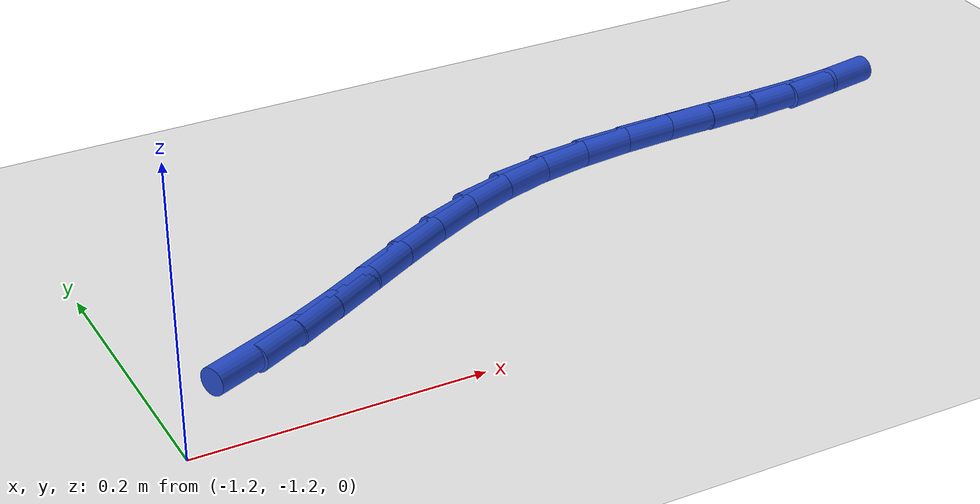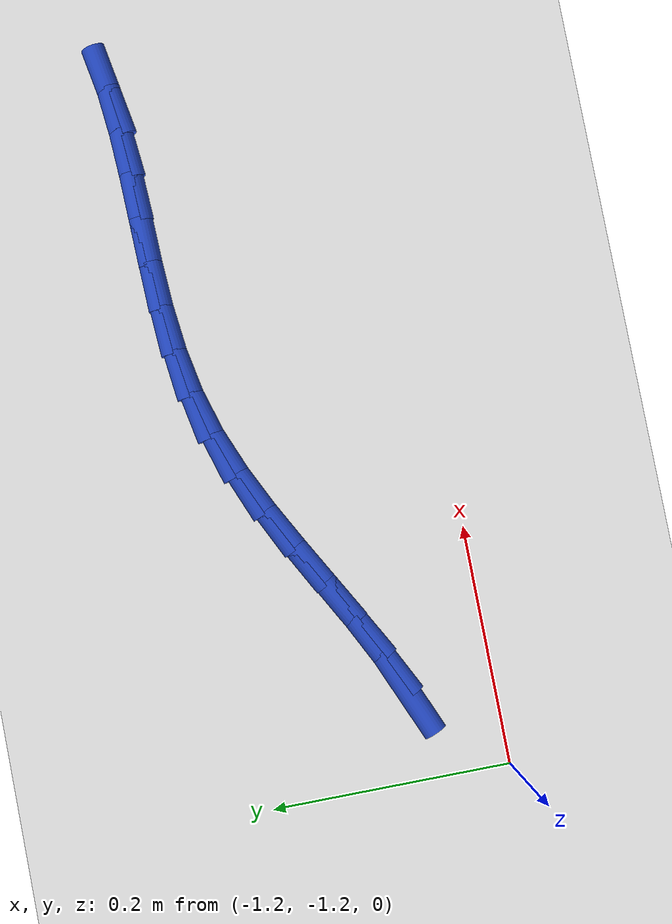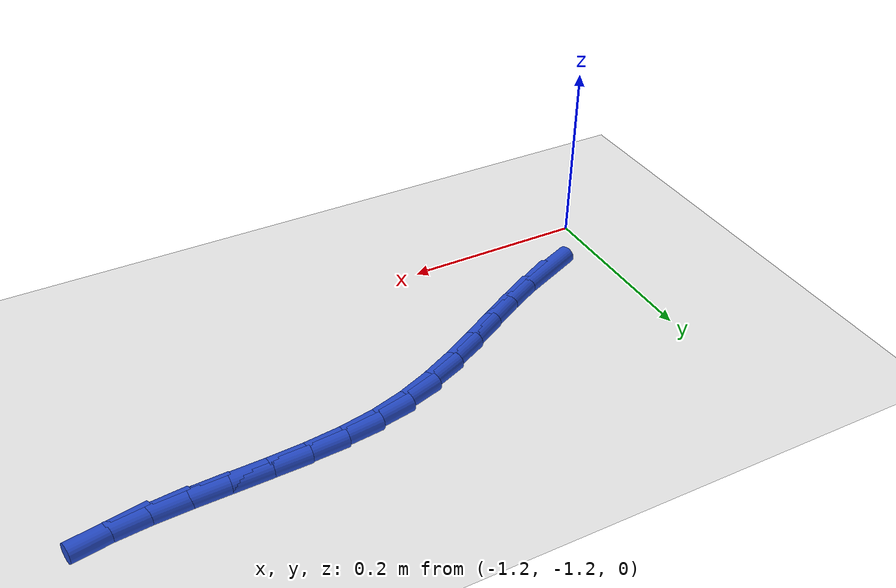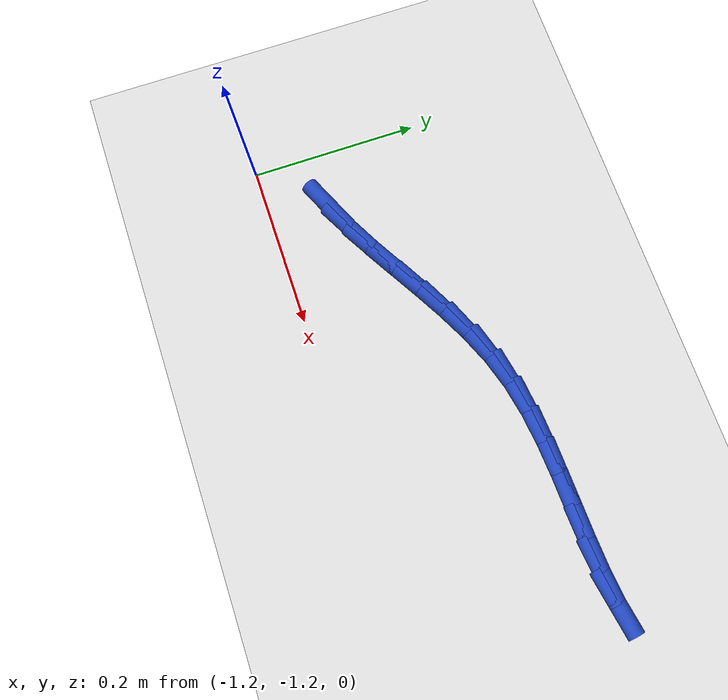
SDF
<sdf version="1.6">
 <world name="default">
  <model name="ground_plane">
   <static>1</static>
   <link name="link">
    <collision name="collision">
     <geometry><plane><normal>0 0 1</normal><size>100 100</size></plane></geometry>
     <surface><friction><ode><mu>100</mu><mu2>50</mu2></ode></friction></surface>
    </collision>
    <visual name="visual">
     <cast_shadows>0</cast_shadows>
     <geometry><plane><normal>0 0 1</normal><size>100 100</size></plane></geometry>
     <material>
      <script><uri>file://media/materials/scripts/gazebo.material</uri><name>Gazebo/WhiteGlow</name></script>
     </material>
    </visual>
   </link>
  </model>
  <model name="line">
   <link name="link_133">
    <pose>-1.124370812362249 -1.1277840646789563 0.01 0 1.57 0.4038265379124277</pose>
    <collision name="collision">
     <geometry><cylinder><radius>0.01</radius><length>0.08</length></cylinder></geometry>
    </collision>
    <visual name="visual">
     <material>
      <script><name>Gazebo/Blue</name><uri>file://media/materials/scripts/gazebo.material</uri></script>
     </material>
     <geometry><cylinder><radius>0.01</radius><length>0.08</length></cylinder></geometry>
    </visual>
   </link>
   <link name="link_134">
    <pose>-1.0912184356415795 -1.1136176862062315 0.01 0 1.57 0.4703799302652865</pose>
    <collision name="collision">
     <geometry><cylinder><radius>0.01</radius><length>0.08</length></cylinder></geometry>
    </collision>
    <visual name="visual">
     <material>
      <script><name>Gazebo/Blue</name><uri>file://media/materials/scripts/gazebo.material</uri></script>
     </material>
     <geometry><cylinder><radius>0.01</radius><length>0.08</length></cylinder></geometry>
    </visual>
   </link>
   <link name="link_135">
    <pose>-1.0580538053261042 -1.0967553304736788 0.01 0 1.57 0.5065493199760265</pose>
    <collision name="collision">
     <geometry><cylinder><radius>0.01</radius><length>0.08</length></cylinder></geometry>
    </collision>
    <visual name="visual">
     <material>
      <script><name>Gazebo/Blue</name><uri>file://media/materials/scripts/gazebo.material</uri></script>
     </material>
     <geometry><cylinder><radius>0.01</radius><length>0.08</length></cylinder></geometry>
    </visual>
   </link>
   <link name="link_136">
    <pose>-1.0247073397308137 -1.078253474577354 0.01 0 1.57 0.5153111465258455</pose>
    <collision name="collision">
     <geometry><cylinder><radius>0.01</radius><length>0.08</length></cylinder></geometry>
    </collision>
    <visual name="visual">
     <material>
      <script><name>Gazebo/Blue</name><uri>file://media/materials/scripts/gazebo.material</uri></script>
     </material>
     <geometry><cylinder><radius>0.01</radius><length>0.08</length></cylinder></geometry>
    </visual>
   </link>
   <link name="link_137">
    <pose>-0.9910094571706987 -1.059168595613313 0.01 0 1.57 0.498142785427176</pose>
    <collision name="collision">
     <geometry><cylinder><radius>0.01</radius><length>0.08</length></cylinder></geometry>
    </collision>
    <visual name="visual">
     <material>
      <script><name>Gazebo/Blue</name><uri>file://media/materials/scripts/gazebo.material</uri></script>
     </material>
     <geometry><cylinder><radius>0.01</radius><length>0.08</length></cylinder></geometry>
    </visual>
   </link>
   <link name="link_138">
    <pose>-0.9567905759607516 -1.0405571706776118 0.01 0 1.57 0.45505782785421156</pose>
    <collision name="collision">
     <geometry><cylinder><radius>0.01</radius><length>0.08</length></cylinder></geometry>
    </collision>
    <visual name="visual">
     <material>
      <script><name>Gazebo/Blue</name><uri>file://media/materials/scripts/gazebo.material</uri></script>
     </material>
     <geometry><cylinder><radius>0.01</radius><length>0.08</length></cylinder></geometry>
    </visual>
   </link>
   <link name="link_139">
    <pose>-0.9218811144159632 -1.023475676866307 0.01 0 1.57 0.3850107179537105</pose>
    <collision name="collision">
     <geometry><cylinder><radius>0.01</radius><length>0.08</length></cylinder></geometry>
    </collision>
    <visual name="visual">
     <material>
      <script><name>Gazebo/Blue</name><uri>file://media/materials/scripts/gazebo.material</uri></script>
     </material>
     <geometry><cylinder><radius>0.01</radius><length>0.08</length></cylinder></geometry>
    </visual>
   </link>
   <link name="link_140">
    <pose>-0.8861114908513251 -1.0089805912754544 0.01 0 1.57 0.2875839557276968</pose>
    <collision name="collision">
     <geometry><cylinder><radius>0.01</radius><length>0.08</length></cylinder></geometry>
    </collision>
    <visual name="visual">
     <material>
      <script><name>Gazebo/Blue</name><uri>file://media/materials/scripts/gazebo.material</uri></script>
     </material>
     <geometry><cylinder><radius>0.01</radius><length>0.08</length></cylinder></geometry>
    </visual>
   </link>
   <link name="link_141">
    <pose>-0.8493198227158005 -0.9980982235051202 0.01 0 1.57 0.18659199507845065</pose>
    <collision name="collision">
     <geometry><cylinder><radius>0.01</radius><length>0.08</length></cylinder></geometry>
    </collision>
    <visual name="visual">
     <material>
      <script><name>Gazebo/Blue</name><uri>file://media/materials/scripts/gazebo.material</uri></script>
     </material>
     <geometry><cylinder><radius>0.01</radius><length>0.08</length></cylinder></geometry>
    </visual>
   </link>
   <link name="link_142">
    <pose>-0.8115696913476874 -0.9909714486027235 0.01 0 1.57 0.1097965570118905</pose>
    <collision name="collision">
     <geometry><cylinder><radius>0.01</radius><length>0.08</length></cylinder></geometry>
    </collision>
    <visual name="visual">
     <material>
      <script><name>Gazebo/Blue</name><uri>file://media/materials/scripts/gazebo.material</uri></script>
     </material>
     <geometry><cylinder><radius>0.01</radius><length>0.08</length></cylinder></geometry>
    </visual>
   </link>
   <link name="link_143">
    <pose>-0.7731808295194447 -0.9867394641384793 0.01 0 1.57 0.0581433082539435</pose>
    <collision name="collision">
     <geometry><cylinder><radius>0.01</radius><length>0.08</length></cylinder></geometry>
    </collision>
    <visual name="visual">
     <material>
      <script><name>Gazebo/Blue</name><uri>file://media/materials/scripts/gazebo.material</uri></script>
     </material>
     <geometry><cylinder><radius>0.01</radius><length>0.08</length></cylinder></geometry>
    </visual>
   </link>
   <link name="link_144">
    <pose>-0.7344868379935537 -0.9844871287744995 0.01 0 1.57 0.030710931245391326</pose>
    <collision name="collision">
     <geometry><cylinder><radius>0.01</radius><length>0.08</length></cylinder></geometry>
    </collision>
    <visual name="visual">
     <material>
      <script><name>Gazebo/Blue</name><uri>file://media/materials/scripts/gazebo.material</uri></script>
     </material>
     <geometry><cylinder><radius>0.01</radius><length>0.08</length></cylinder></geometry>
    </visual>
   </link>
   <link name="link_145">
    <pose>-0.695821317532497 -0.9832993011728957 0.01 0 1.57 0.02710478803073976</pose>
    <collision name="collision">
     <geometry><cylinder><radius>0.01</radius><length>0.08</length></cylinder></geometry>
    </collision>
    <visual name="visual">
     <material>
      <script><name>Gazebo/Blue</name><uri>file://media/materials/scripts/gazebo.material</uri></script>
     </material>
     <geometry><cylinder><radius>0.01</radius><length>0.08</length></cylinder></geometry>
    </visual>
   </link>
   <link name="link_146">
    <pose>-0.6575178688987556 -0.982260839995779 0.01 0 1.57 0.047938324825843294</pose>
    <collision name="collision">
     <geometry><cylinder><radius>0.01</radius><length>0.08</length></cylinder></geometry>
    </collision>
    <visual name="visual">
     <material>
      <script><name>Gazebo/Blue</name><uri>file://media/materials/scripts/gazebo.material</uri></script>
     </material>
     <geometry><cylinder><radius>0.01</radius><length>0.08</length></cylinder></geometry>
    </visual>
   </link>
   <link name="link_147">
    <pose>-0.6199100928548121 -0.9804566039052611 0.01 0 1.57 0.09499195022814813</pose>
    <collision name="collision">
     <geometry><cylinder><radius>0.01</radius><length>0.08</length></cylinder></geometry>
    </collision>
    <visual name="visual">
     <material>
      <script><name>Gazebo/Blue</name><uri>file://media/materials/scripts/gazebo.material</uri></script>
     </material>
     <geometry><cylinder><radius>0.01</radius><length>0.08</length></cylinder></geometry>
    </visual>
   </link>
   <link name="link_148">
    <pose>-0.5833315901631476 -0.9769714515634534 0.01 0 1.57 0.1709985525719314</pose>
    <collision name="collision">
     <geometry><cylinder><radius>0.01</radius><length>0.08</length></cylinder></geometry>
    </collision>
    <visual name="visual">
     <material>
      <script><name>Gazebo/Blue</name><uri>file://media/materials/scripts/gazebo.material</uri></script>
     </material>
     <geometry><cylinder><radius>0.01</radius><length>0.08</length></cylinder></geometry>
    </visual>
   </link>
  </model>
 </world>
</sdf>
